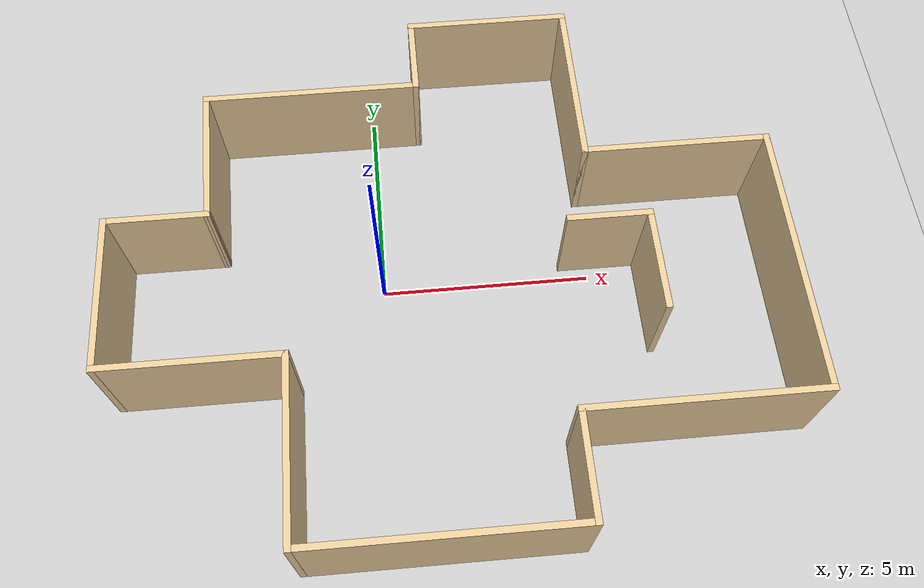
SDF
<sdf version="1.7">
 <world name="default">
  <light name="sun" type="directional">
   <pose>0 0 10 0 -0 0</pose>
   <diffuse>0.8 0.8 0.8 1</diffuse>
   <specular>0.2 0.2 0.2 1</specular>
   <attenuation>
    <range>1000</range>
    <constant>0.9</constant>
    <linear>0.01</linear>
    <quadratic>0.001</quadratic>
   </attenuation>
   <direction>-0.5 0.1 -0.9</direction>
   <spot><inner_angle>0</inner_angle><outer_angle>0</outer_angle><falloff>0</falloff></spot>
  </light>
  <model name="ground_plane">
   <static>1</static>
   <link name="link">
    <collision name="collision">
     <geometry><plane><normal>0 0 1</normal><size>100 100</size></plane></geometry>
     <surface>
      <contact><collide_bitmask>65535</collide_bitmask></contact>
      <friction><ode><mu>100</mu><mu2>50</mu2></ode></friction>
     </surface>
    </collision>
    <visual name="visual">
     <cast_shadows>0</cast_shadows>
     <geometry><plane><normal>0 0 1</normal><size>100 100</size></plane></geometry>
     <material>
      <script><uri>file://media/materials/scripts/gazebo.material</uri><name>Gazebo/Grey</name></script>
     </material>
    </visual>
   </link>
  </model>
  <gravity>0 0 -9.8</gravity>
  <magnetic_field>6e-06 2.3e-05 -4.2e-05</magnetic_field>
  <atmosphere type="adiabatic"/>
  <physics type="ode">
   <max_step_size>0.001</max_step_size>
   <real_time_factor>1</real_time_factor>
   <real_time_update_rate>1000</real_time_update_rate>
  </physics>
  <scene><ambient>0.4 0.4 0.4 1</ambient><background>0.7 0.7 0.7 1</background><shadows>1</shadows></scene>
  <spherical_coordinates>
   <surface_model>EARTH_WGS84</surface_model>
   <latitude_deg>0</latitude_deg>
   <longitude_deg>0</longitude_deg>
   <elevation>0</elevation>
   <heading_deg>0</heading_deg>
  </spherical_coordinates>
  <model name="my_worlds">
   <pose>1.57174 -0.148162 0 0 -0 0</pose>
   <link name="Wall_13">
    <collision name="Wall_13_Collision">
     <geometry><box><size>5.25 0.15 2.5</size></box></geometry>
     <pose>0 0 1.25 0 -0 0</pose>
    </collision>
    <visual name="Wall_13_Visual">
     <pose>0 0 1.25 0 -0 0</pose>
     <geometry><box><size>5.25 0.15 2.5</size></box></geometry>
     <material>
      <script><uri>file://media/materials/scripts/gazebo.material</uri><name>Gazebo/Grey</name></script>
      <ambient>0.921569 0.807843 0.615686 1</ambient>
     </material>
     <meta><layer>0</layer></meta>
    </visual>
    <pose>-2.975 4.55 0 0 -0 0</pose>
   </link>
   <link name="Wall_14">
    <collision name="Wall_14_Collision">
     <geometry><box><size>2 0.15 2.5</size></box></geometry>
     <pose>0 0 1.25 0 -0 0</pose>
    </collision>
    <visual name="Wall_14_Visual">
     <pose>0 0 1.25 0 -0 0</pose>
     <geometry><box><size>2 0.15 2.5</size></box></geometry>
     <material>
      <script><uri>file://media/materials/scripts/gazebo.material</uri><name>Gazebo/Grey</name></script>
      <ambient>0.921569 0.807843 0.615686 1</ambient>
     </material>
     <meta><layer>0</layer></meta>
    </visual>
    <pose>-0.425 5.475 0 0 -0 1.5708</pose>
   </link>
   <link name="Wall_15">
    <collision name="Wall_15_Collision">
     <geometry><box><size>4 0.15 2.5</size></box></geometry>
     <pose>0 0 1.25 0 -0 0</pose>
    </collision>
    <visual name="Wall_15_Visual">
     <pose>0 0 1.25 0 -0 0</pose>
     <geometry><box><size>4 0.15 2.5</size></box></geometry>
     <material>
      <script><uri>file://media/materials/scripts/gazebo.material</uri><name>Gazebo/Grey</name></script>
      <ambient>0.921569 0.807843 0.615686 1</ambient>
     </material>
     <meta><layer>0</layer></meta>
    </visual>
    <pose>1.5 6.4 0 0 -0 0</pose>
   </link>
   <link name="Wall_16">
    <collision name="Wall_16_Collision">
     <geometry><box><size>4.25 0.15 2.5</size></box></geometry>
     <pose>0 0 1.25 0 -0 0</pose>
    </collision>
    <visual name="Wall_16_Visual">
     <pose>0 0 1.25 0 -0 0</pose>
     <geometry><box><size>4.25 0.15 2.5</size></box></geometry>
     <material>
      <script><uri>file://media/materials/scripts/gazebo.material</uri><name>Gazebo/Grey</name></script>
      <ambient>0.921569 0.807843 0.615686 1</ambient>
     </material>
     <meta><layer>0</layer></meta>
    </visual>
    <pose>3.425 4.35 0 0 -0 -1.5708</pose>
   </link>
   <link name="Wall_17">
    <collision name="Wall_17_Collision">
     <geometry><box><size>4.5 0.15 2.5</size></box></geometry>
     <pose>0 0 1.25 0 -0 0</pose>
    </collision>
    <visual name="Wall_17_Visual">
     <pose>0 0 1.25 0 -0 0</pose>
     <geometry><box><size>4.5 0.15 2.5</size></box></geometry>
     <material>
      <script><uri>file://media/materials/scripts/gazebo.material</uri><name>Gazebo/Grey</name></script>
      <ambient>0.921569 0.807843 0.615686 1</ambient>
     </material>
     <meta><layer>0</layer></meta>
    </visual>
    <pose>5.6 2.3 0 0 -0 0</pose>
   </link>
   <link name="Wall_18">
    <collision name="Wall_18_Collision">
     <geometry><box><size>6.5 0.15 2.5</size></box></geometry>
     <pose>0 0 1.25 0 -0 0</pose>
    </collision>
    <visual name="Wall_18_Visual">
     <pose>0 0 1.25 0 -0 0</pose>
     <geometry><box><size>6.5 0.15 2.5</size></box></geometry>
     <material>
      <script><uri>file://media/materials/scripts/gazebo.material</uri><name>Gazebo/Grey</name></script>
      <ambient>0.921569 0.807843 0.615686 1</ambient>
     </material>
     <meta><layer>0</layer></meta>
    </visual>
    <pose>7.775 -0.875 0 0 -0 -1.5708</pose>
   </link>
   <link name="Wall_19">
    <collision name="Wall_19_Collision">
     <geometry><box><size>5.5 0.15 2.5</size></box></geometry>
     <pose>0 0 1.25 0 -0 0</pose>
    </collision>
    <visual name="Wall_19_Visual">
     <pose>0 0 1.25 0 -0 0</pose>
     <geometry><box><size>5.5 0.15 2.5</size></box></geometry>
     <material>
      <script><uri>file://media/materials/scripts/gazebo.material</uri><name>Gazebo/Grey</name></script>
      <ambient>0.921569 0.807843 0.615686 1</ambient>
     </material>
     <meta><layer>0</layer></meta>
    </visual>
    <pose>5.1 -4.05 0 0 -0 3.14159</pose>
   </link>
   <link name="Wall_20">
    <collision name="Wall_20_Collision">
     <geometry><box><size>2.5 0.15 2.5</size></box></geometry>
     <pose>0 0 1.25 0 -0 0</pose>
    </collision>
    <visual name="Wall_20_Visual">
     <pose>0 0 1.25 0 -0 0</pose>
     <geometry><box><size>2.5 0.15 2.5</size></box></geometry>
     <material>
      <script><uri>file://media/materials/scripts/gazebo.material</uri><name>Gazebo/Grey</name></script>
      <ambient>0.921569 0.807843 0.615686 1</ambient>
     </material>
     <meta><layer>0</layer></meta>
    </visual>
    <pose>2.425 -5.225 0 0 -0 -1.5708</pose>
   </link>
   <link name="Wall_21">
    <collision name="Wall_21_Collision">
     <geometry><box><size>6.25 0.15 2.5</size></box></geometry>
     <pose>0 0 1.25 0 -0 0</pose>
    </collision>
    <visual name="Wall_21_Visual">
     <pose>0 0 1.25 0 -0 0</pose>
     <geometry><box><size>6.25 0.15 2.5</size></box></geometry>
     <material>
      <script><uri>file://media/materials/scripts/gazebo.material</uri><name>Gazebo/Grey</name></script>
      <ambient>0.921569 0.807843 0.615686 1</ambient>
     </material>
     <meta><layer>0</layer></meta>
    </visual>
    <pose>-0.625 -6.4 0 0 -0 3.14159</pose>
   </link>
   <link name="Wall_22">
    <collision name="Wall_22_Collision">
     <geometry><box><size>4.25 0.15 2.5</size></box></geometry>
     <pose>0 0 1.25 0 -0 0</pose>
    </collision>
    <visual name="Wall_22_Visual">
     <pose>0 0 1.25 0 -0 0</pose>
     <geometry><box><size>4.25 0.15 2.5</size></box></geometry>
     <material>
      <script><uri>file://media/materials/scripts/gazebo.material</uri><name>Gazebo/Grey</name></script>
      <ambient>0.921569 0.807843 0.615686 1</ambient>
     </material>
     <meta><layer>0</layer></meta>
    </visual>
    <pose>-3.675 -4.35 0 0 -0 1.5708</pose>
   </link>
   <link name="Wall_23">
    <collision name="Wall_23_Collision">
     <geometry><box><size>4.25 0.15 2.5</size></box></geometry>
     <pose>0 0 1.25 0 -0 0</pose>
    </collision>
    <visual name="Wall_23_Visual">
     <pose>0 0 1.25 0 -0 0</pose>
     <geometry><box><size>4.25 0.15 2.5</size></box></geometry>
     <material>
      <script><uri>file://media/materials/scripts/gazebo.material</uri><name>Gazebo/Grey</name></script>
      <ambient>0.921569 0.807843 0.615686 1</ambient>
     </material>
     <meta><layer>0</layer></meta>
    </visual>
    <pose>-5.725 -2.3 0 0 -0 3.14159</pose>
   </link>
   <link name="Wall_24">
    <collision name="Wall_24_Collision">
     <geometry><box><size>3.75 0.15 2.5</size></box></geometry>
     <pose>0 0 1.25 0 -0 0</pose>
    </collision>
    <visual name="Wall_24_Visual">
     <pose>0 0 1.25 0 -0 0</pose>
     <geometry><box><size>3.75 0.15 2.5</size></box></geometry>
     <material>
      <script><uri>file://media/materials/scripts/gazebo.material</uri><name>Gazebo/Grey</name></script>
      <ambient>0.921569 0.807843 0.615686 1</ambient>
     </material>
     <meta><layer>0</layer></meta>
    </visual>
    <pose>-7.775 -0.5 0 0 -0 1.5708</pose>
   </link>
   <link name="Wall_25">
    <collision name="Wall_25_Collision">
     <geometry><box><size>2.5 0.15 2.5</size></box></geometry>
     <pose>0 0 1.25 0 -0 0</pose>
    </collision>
    <visual name="Wall_25_Visual">
     <pose>0 0 1.25 0 -0 0</pose>
     <geometry><box><size>2.5 0.15 2.5</size></box></geometry>
     <material>
      <script><uri>file://media/materials/scripts/gazebo.material</uri><name>Gazebo/Grey</name></script>
      <ambient>0.921569 0.807843 0.615686 1</ambient>
     </material>
     <meta><layer>0</layer></meta>
    </visual>
    <pose>-6.6 1.3 0 0 -0 0</pose>
   </link>
   <link name="Wall_26">
    <collision name="Wall_26_Collision">
     <geometry><box><size>3.40154 0.15 2.5</size></box></geometry>
     <pose>0 0 1.25 0 -0 0</pose>
    </collision>
    <visual name="Wall_26_Visual">
     <pose>0 0 1.25 0 -0 0</pose>
     <geometry><box><size>3.40154 0.15 2.5</size></box></geometry>
     <material>
      <script><uri>file://media/materials/scripts/gazebo.material</uri><name>Gazebo/Grey</name></script>
      <ambient>0.921569 0.807843 0.615686 1</ambient>
     </material>
     <meta><layer>0</layer></meta>
    </visual>
    <pose>-5.475 2.925 0 0 -0 1.60156</pose>
   </link>
   <link name="Wall_28">
    <collision name="Wall_28_Collision">
     <geometry><box><size>2.5 0.15 2.5</size></box></geometry>
     <pose>0 0 1.25 0 -0 0</pose>
    </collision>
    <visual name="Wall_28_Visual">
     <pose>0 0 1.25 0 -0 0</pose>
     <geometry><box><size>2.5 0.15 2.5</size></box></geometry>
     <material>
      <script><uri>file://media/materials/scripts/gazebo.material</uri><name>Gazebo/Grey</name></script>
      <ambient>0.921569 0.807843 0.615686 1</ambient>
     </material>
     <meta><layer>0</layer></meta>
    </visual>
    <pose>4.66782 -0.687098 0 0 -0 1.5708</pose>
   </link>
   <link name="Wall_29">
    <collision name="Wall_29_Collision">
     <geometry><box><size>2 0.15 2.5</size></box></geometry>
     <pose>0 0 1.25 0 -0 0</pose>
    </collision>
    <visual name="Wall_29_Visual">
     <pose>0 0 1.25 0 -0 0</pose>
     <geometry><box><size>2 0.15 2.5</size></box></geometry>
     <material>
      <script><uri>file://media/materials/scripts/gazebo.material</uri><name>Gazebo/Grey</name></script>
      <ambient>0.921569 0.807843 0.615686 1</ambient>
     </material>
     <meta><layer>0</layer></meta>
    </visual>
    <pose>3.74282 0.487902 0 0 -0 3.14159</pose>
   </link>
   <static>1</static>
  </model>
 </world>
</sdf>
